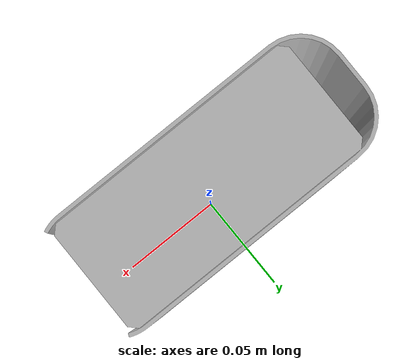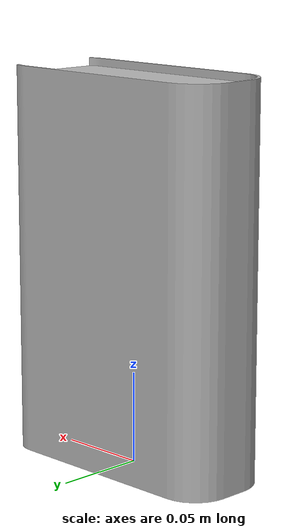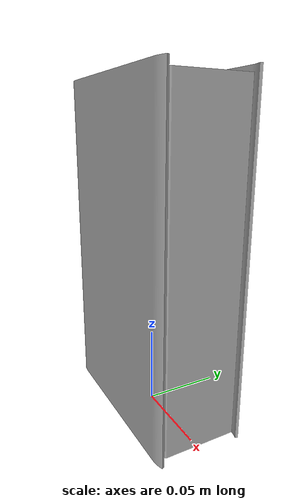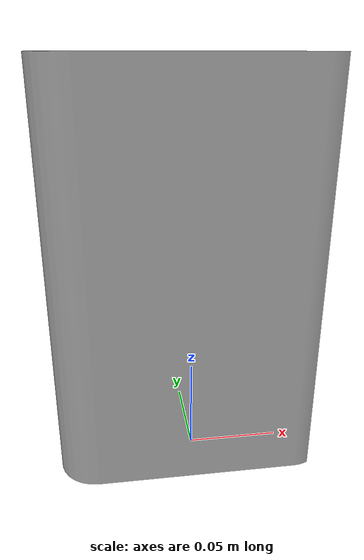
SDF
<?xml version="1.0" ?>
<sdf version="1.5">
  <model name="mpnet_book">
    <pose frame="world">0 0 0.0 0 0 0</pose>
    <link name="mpnet_book_link">
      <inertial>
        <mass>0.1</mass>
	<inertia>
    	  <ixx>0.01</ixx>
    	  <ixy>0</ixy>
    	  <ixz>0</ixz>
    	  <iyy>0.01</iyy>
    	  <iyz>0</iyz>
    	  <izz>0.01</izz>
	</inertia>
      </inertial>
      <visual name="mpnet_book_visual">
        <geometry>
          <mesh>
            <uri>model://mpnet_book/meshes/Dictionary.STL</uri>
            <scale>0.0017 0.0017 0.0017</scale>
          </mesh>
        </geometry>
      </visual>
      <collision name='mpnet_book_collision'>
        <pose frame=''>0.0 0.0 0.0 0.0 0.0 0.0</pose>
          <geometry>
            <mesh>
              <uri>model://mpnet_book/meshes/Dictionary.STL</uri>
              <scale>0.0017 0.0017 0.0017</scale>
            </mesh>
          </geometry>
          <max_contacts>10</max_contacts>
          <surface>
            <friction>
              <ode>
                <mu>1</mu>
                <mu2>1</mu2>
              </ode>
            </friction>
            <bounce>
              <restitution_coefficient>0</restitution_coefficient>
              <threshold>1e+06</threshold>
            </bounce>
            <contact>
              <ode>
                <soft_cfm>0</soft_cfm>
                <soft_erp>0.2</soft_erp>
                <kp>1e+13</kp>
                <kd>1</kd>
                <max_vel>0.01</max_vel>
                <min_depth>0</min_depth>
              </ode>
            </contact>
          </surface>
        </collision>
    </link>
  </model>
</sdf>
